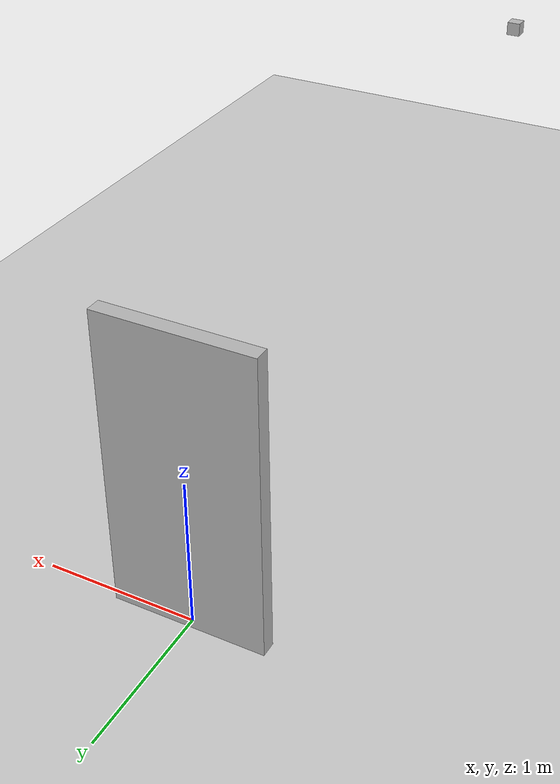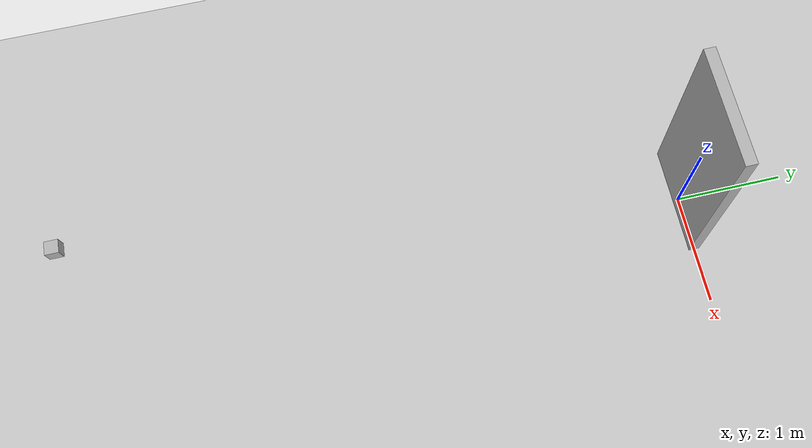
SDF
<?xml version="1.0" ?>
<sdf version="1.6">
  <world name="maze_world">
    <include>
      <uri>model://ground_plane</uri>
    </include>

    <!-- Define the maze as a set of walls -->
    <include>
      <uri>model://maze_wall</uri>
      <pose>0 0 0 0 0 0</pose>
      <static>true</static>
      <name>maze_walls</name>
    </include>

    <!-- Add a light to the scene -->
    <include>
      <uri>model://sun</uri>
      <pose>0 0 10 0 0 0</pose>
      <name>sun</name>
    </include>

    <!-- Add a camera to the scene -->
    <include>
      <uri>model://camera</uri>
      <pose>0 -5 2 0 0 0</pose>
      <name>camera</name>
    </include>
  </world>
</sdf>

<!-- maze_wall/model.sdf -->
<sdf version="1.10">
  <model name="maze_wall">
    <static>true</static>
    <link name="wall_link">
      <visual name="wall_visual">
        <geometry>
          <mesh>
            <uri>model://maze_wall/meshes/maze_wall.dae</uri>
          </mesh>
        </geometry>
      </visual>

      <collision name="wall_collision">
        <geometry>
          <mesh>
            <uri>model://maze_wall/meshes/maze_wall.dae</uri>
          </mesh>
        </geometry>
      </collision>
    </link>
  </model>
</sdf>

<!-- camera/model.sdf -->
<sdf version="1.5">
  <model name="camera">
    <pose>0 0 0.05 0 0 0</pose>
    <link name="link">
      <inertial>
        <mass>0.1</mass>
        <inertia>
          <ixx>0.000166667</ixx>
          <iyy>0.000166667</iyy>
          <izz>0.000166667</izz>
        </inertia>
      </inertial>
      <collision name="collision">
        <geometry>
          <box>
            <size>0.1 0.1 0.1</size>
          </box>
        </geometry>
      </collision>
      <visual name="visual">
        <geometry>
          <box>
            <size>0.1 0.1 0.1</size>
          </box>
        </geometry>
      </visual>
      <sensor name="camera" type="camera">
        <camera>
          <horizontal_fov>1.047</horizontal_fov>
          <image>
            <width>320</width>
            <height>240</height>
          </image>
          <clip>
            <near>0.1</near>
            <far>100</far>
          </clip>
        </camera>
        <always_on>1</always_on>
        <update_rate>30</update_rate>
        <visualize>true</visualize>
      </sensor>
    </link>
  </model>
</sdf>
